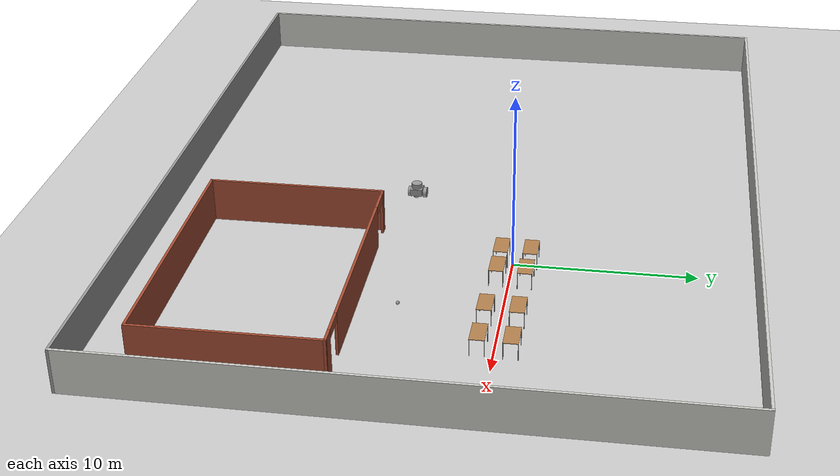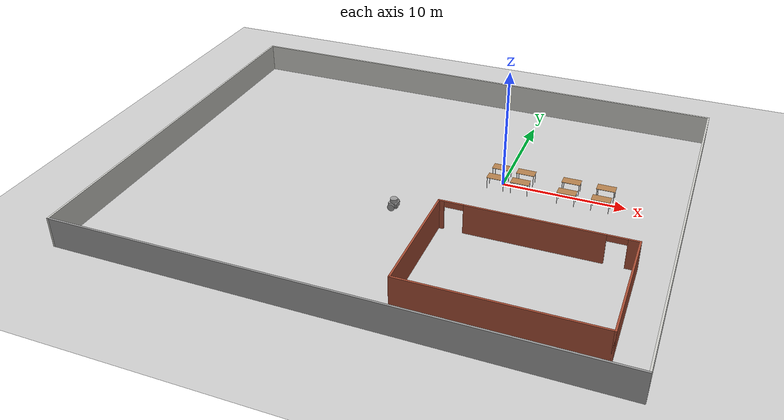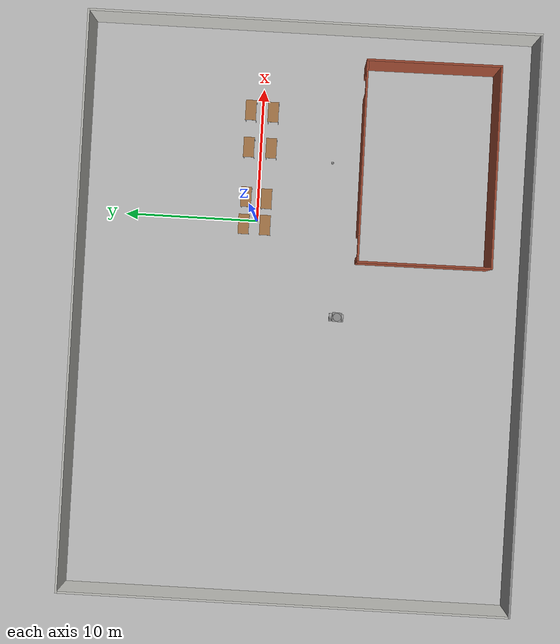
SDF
<sdf version="1.6">
 <world name="default">
  <model name="ground_plane">
   <static>1</static>
   <link name="link">
    <collision name="collision">
     <geometry><plane><normal>0 0 1</normal><size>100 100</size></plane></geometry>
     <surface>
      <contact><collide_bitmask>65535</collide_bitmask></contact>
      <friction><ode><mu>100</mu><mu2>50</mu2></ode></friction>
     </surface>
    </collision>
    <visual name="visual">
     <cast_shadows>0</cast_shadows>
     <geometry><plane><normal>0 0 1</normal><size>100 100</size></plane></geometry>
     <material>
      <script><uri>file://media/materials/scripts/gazebo.material</uri><name>Gazebo/Grey</name></script>
     </material>
    </visual>
   </link>
  </model>
  <model name="table_9">
   <static>1</static>
   <link name="link">
    <collision name="surface">
     <pose>0 0 1 0 -0 0</pose>
     <geometry><box><size>1.5 0.8 0.03</size></box></geometry>
     <surface><friction><ode><mu>0.6</mu><mu2>0.6</mu2></ode></friction></surface>
    </collision>
    <visual name="visual1">
     <pose>0 0 1 0 -0 0</pose>
     <geometry><box><size>1.5 0.8 0.03</size></box></geometry>
     <material>
      <script><uri>file://media/materials/scripts/gazebo.material</uri><name>Gazebo/Wood</name></script>
     </material>
    </visual>
    <collision name="front_left_leg">
     <pose>0.68 0.38 0.5 0 -0 0</pose>
     <geometry><cylinder><radius>0.02</radius><length>1</length></cylinder></geometry>
    </collision>
    <visual name="front_left_leg">
     <pose>0.68 0.38 0.5 0 -0 0</pose>
     <geometry><cylinder><radius>0.02</radius><length>1</length></cylinder></geometry>
     <material>
      <script><uri>file://media/materials/scripts/gazebo.material</uri><name>Gazebo/Grey</name></script>
     </material>
    </visual>
    <collision name="front_right_leg">
     <pose>0.68 -0.38 0.5 0 -0 0</pose>
     <geometry><cylinder><radius>0.02</radius><length>1</length></cylinder></geometry>
    </collision>
    <visual name="front_right_leg">
     <pose>0.68 -0.38 0.5 0 -0 0</pose>
     <geometry><cylinder><radius>0.02</radius><length>1</length></cylinder></geometry>
     <material>
      <script><uri>file://media/materials/scripts/gazebo.material</uri><name>Gazebo/Grey</name></script>
     </material>
    </visual>
    <collision name="back_right_leg">
     <pose>-0.68 -0.38 0.5 0 -0 0</pose>
     <geometry><cylinder><radius>0.02</radius><length>1</length></cylinder></geometry>
    </collision>
    <visual name="back_right_leg">
     <pose>-0.68 -0.38 0.5 0 -0 0</pose>
     <geometry><cylinder><radius>0.02</radius><length>1</length></cylinder></geometry>
     <material>
      <script><uri>file://media/materials/scripts/gazebo.material</uri><name>Gazebo/Grey</name></script>
     </material>
    </visual>
    <collision name="back_left_leg">
     <pose>-0.68 0.38 0.5 0 -0 0</pose>
     <geometry><cylinder><radius>0.02</radius><length>1</length></cylinder></geometry>
    </collision>
    <visual name="back_left_leg">
     <pose>-0.68 0.38 0.5 0 -0 0</pose>
     <geometry><cylinder><radius>0.02</radius><length>1</length></cylinder></geometry>
     <material>
      <script><uri>file://media/materials/scripts/gazebo.material</uri><name>Gazebo/Grey</name></script>
     </material>
    </visual>
   </link>
   <pose>8.12729 -0.810294 0 0 -0 0</pose>
  </model>
  <model name="table_10">
   <static>1</static>
   <link name="link">
    <collision name="surface">
     <pose>0 0 1 0 -0 0</pose>
     <geometry><box><size>1.5 0.8 0.03</size></box></geometry>
     <surface><friction><ode><mu>0.6</mu><mu2>0.6</mu2></ode></friction></surface>
    </collision>
    <visual name="visual1">
     <pose>0 0 1 0 -0 0</pose>
     <geometry><box><size>1.5 0.8 0.03</size></box></geometry>
     <material>
      <script><uri>file://media/materials/scripts/gazebo.material</uri><name>Gazebo/Wood</name></script>
     </material>
    </visual>
    <collision name="front_left_leg">
     <pose>0.68 0.38 0.5 0 -0 0</pose>
     <geometry><cylinder><radius>0.02</radius><length>1</length></cylinder></geometry>
    </collision>
    <visual name="front_left_leg">
     <pose>0.68 0.38 0.5 0 -0 0</pose>
     <geometry><cylinder><radius>0.02</radius><length>1</length></cylinder></geometry>
     <material>
      <script><uri>file://media/materials/scripts/gazebo.material</uri><name>Gazebo/Grey</name></script>
     </material>
    </visual>
    <collision name="front_right_leg">
     <pose>0.68 -0.38 0.5 0 -0 0</pose>
     <geometry><cylinder><radius>0.02</radius><length>1</length></cylinder></geometry>
    </collision>
    <visual name="front_right_leg">
     <pose>0.68 -0.38 0.5 0 -0 0</pose>
     <geometry><cylinder><radius>0.02</radius><length>1</length></cylinder></geometry>
     <material>
      <script><uri>file://media/materials/scripts/gazebo.material</uri><name>Gazebo/Grey</name></script>
     </material>
    </visual>
    <collision name="back_right_leg">
     <pose>-0.68 -0.38 0.5 0 -0 0</pose>
     <geometry><cylinder><radius>0.02</radius><length>1</length></cylinder></geometry>
    </collision>
    <visual name="back_right_leg">
     <pose>-0.68 -0.38 0.5 0 -0 0</pose>
     <geometry><cylinder><radius>0.02</radius><length>1</length></cylinder></geometry>
     <material>
      <script><uri>file://media/materials/scripts/gazebo.material</uri><name>Gazebo/Grey</name></script>
     </material>
    </visual>
    <collision name="back_left_leg">
     <pose>-0.68 0.38 0.5 0 -0 0</pose>
     <geometry><cylinder><radius>0.02</radius><length>1</length></cylinder></geometry>
    </collision>
    <visual name="back_left_leg">
     <pose>-0.68 0.38 0.5 0 -0 0</pose>
     <geometry><cylinder><radius>0.02</radius><length>1</length></cylinder></geometry>
     <material>
      <script><uri>file://media/materials/scripts/gazebo.material</uri><name>Gazebo/Grey</name></script>
     </material>
    </visual>
   </link>
   <pose>8.2006 0.876283 0 0 -0 0</pose>
  </model>
  <model name="table_13">
   <static>1</static>
   <link name="link">
    <collision name="surface">
     <pose>0 0 1 0 -0 0</pose>
     <geometry><box><size>1.5 0.8 0.03</size></box></geometry>
     <surface><friction><ode><mu>0.6</mu><mu2>0.6</mu2></ode></friction></surface>
    </collision>
    <visual name="visual1">
     <pose>0 0 1 0 -0 0</pose>
     <geometry><box><size>1.5 0.8 0.03</size></box></geometry>
     <material>
      <script><uri>file://media/materials/scripts/gazebo.material</uri><name>Gazebo/Wood</name></script>
     </material>
    </visual>
    <collision name="front_left_leg">
     <pose>0.68 0.38 0.5 0 -0 0</pose>
     <geometry><cylinder><radius>0.02</radius><length>1</length></cylinder></geometry>
    </collision>
    <visual name="front_left_leg">
     <pose>0.68 0.38 0.5 0 -0 0</pose>
     <geometry><cylinder><radius>0.02</radius><length>1</length></cylinder></geometry>
     <material>
      <script><uri>file://media/materials/scripts/gazebo.material</uri><name>Gazebo/Grey</name></script>
     </material>
    </visual>
    <collision name="front_right_leg">
     <pose>0.68 -0.38 0.5 0 -0 0</pose>
     <geometry><cylinder><radius>0.02</radius><length>1</length></cylinder></geometry>
    </collision>
    <visual name="front_right_leg">
     <pose>0.68 -0.38 0.5 0 -0 0</pose>
     <geometry><cylinder><radius>0.02</radius><length>1</length></cylinder></geometry>
     <material>
      <script><uri>file://media/materials/scripts/gazebo.material</uri><name>Gazebo/Grey</name></script>
     </material>
    </visual>
    <collision name="back_right_leg">
     <pose>-0.68 -0.38 0.5 0 -0 0</pose>
     <geometry><cylinder><radius>0.02</radius><length>1</length></cylinder></geometry>
    </collision>
    <visual name="back_right_leg">
     <pose>-0.68 -0.38 0.5 0 -0 0</pose>
     <geometry><cylinder><radius>0.02</radius><length>1</length></cylinder></geometry>
     <material>
      <script><uri>file://media/materials/scripts/gazebo.material</uri><name>Gazebo/Grey</name></script>
     </material>
    </visual>
    <collision name="back_left_leg">
     <pose>-0.68 0.38 0.5 0 -0 0</pose>
     <geometry><cylinder><radius>0.02</radius><length>1</length></cylinder></geometry>
    </collision>
    <visual name="back_left_leg">
     <pose>-0.68 0.38 0.5 0 -0 0</pose>
     <geometry><cylinder><radius>0.02</radius><length>1</length></cylinder></geometry>
     <material>
      <script><uri>file://media/materials/scripts/gazebo.material</uri><name>Gazebo/Grey</name></script>
     </material>
    </visual>
   </link>
   <pose>5.41488 -0.809022 0 0 -0 0</pose>
  </model>
  <model name="table_14">
   <static>1</static>
   <link name="link">
    <collision name="surface">
     <pose>0 0 1 0 -0 0</pose>
     <geometry><box><size>1.5 0.8 0.03</size></box></geometry>
     <surface><friction><ode><mu>0.6</mu><mu2>0.6</mu2></ode></friction></surface>
    </collision>
    <visual name="visual1">
     <pose>0 0 1 0 -0 0</pose>
     <geometry><box><size>1.5 0.8 0.03</size></box></geometry>
     <material>
      <script><uri>file://media/materials/scripts/gazebo.material</uri><name>Gazebo/Wood</name></script>
     </material>
    </visual>
    <collision name="front_left_leg">
     <pose>0.68 0.38 0.5 0 -0 0</pose>
     <geometry><cylinder><radius>0.02</radius><length>1</length></cylinder></geometry>
    </collision>
    <visual name="front_left_leg">
     <pose>0.68 0.38 0.5 0 -0 0</pose>
     <geometry><cylinder><radius>0.02</radius><length>1</length></cylinder></geometry>
     <material>
      <script><uri>file://media/materials/scripts/gazebo.material</uri><name>Gazebo/Grey</name></script>
     </material>
    </visual>
    <collision name="front_right_leg">
     <pose>0.68 -0.38 0.5 0 -0 0</pose>
     <geometry><cylinder><radius>0.02</radius><length>1</length></cylinder></geometry>
    </collision>
    <visual name="front_right_leg">
     <pose>0.68 -0.38 0.5 0 -0 0</pose>
     <geometry><cylinder><radius>0.02</radius><length>1</length></cylinder></geometry>
     <material>
      <script><uri>file://media/materials/scripts/gazebo.material</uri><name>Gazebo/Grey</name></script>
     </material>
    </visual>
    <collision name="back_right_leg">
     <pose>-0.68 -0.38 0.5 0 -0 0</pose>
     <geometry><cylinder><radius>0.02</radius><length>1</length></cylinder></geometry>
    </collision>
    <visual name="back_right_leg">
     <pose>-0.68 -0.38 0.5 0 -0 0</pose>
     <geometry><cylinder><radius>0.02</radius><length>1</length></cylinder></geometry>
     <material>
      <script><uri>file://media/materials/scripts/gazebo.material</uri><name>Gazebo/Grey</name></script>
     </material>
    </visual>
    <collision name="back_left_leg">
     <pose>-0.68 0.38 0.5 0 -0 0</pose>
     <geometry><cylinder><radius>0.02</radius><length>1</length></cylinder></geometry>
    </collision>
    <visual name="back_left_leg">
     <pose>-0.68 0.38 0.5 0 -0 0</pose>
     <geometry><cylinder><radius>0.02</radius><length>1</length></cylinder></geometry>
     <material>
      <script><uri>file://media/materials/scripts/gazebo.material</uri><name>Gazebo/Grey</name></script>
     </material>
    </visual>
   </link>
   <pose>5.41488 0.876571 0 0 -0 0</pose>
  </model>
  <model name="table_17">
   <static>1</static>
   <link name="link">
    <collision name="surface">
     <pose>0 0 1 0 -0 0</pose>
     <geometry><box><size>1.5 0.8 0.03</size></box></geometry>
     <surface><friction><ode><mu>0.6</mu><mu2>0.6</mu2></ode></friction></surface>
    </collision>
    <visual name="visual1">
     <pose>0 0 1 0 -0 0</pose>
     <geometry><box><size>1.5 0.8 0.03</size></box></geometry>
     <material>
      <script><uri>file://media/materials/scripts/gazebo.material</uri><name>Gazebo/Wood</name></script>
     </material>
    </visual>
    <collision name="front_left_leg">
     <pose>0.68 0.38 0.5 0 -0 0</pose>
     <geometry><cylinder><radius>0.02</radius><length>1</length></cylinder></geometry>
    </collision>
    <visual name="front_left_leg">
     <pose>0.68 0.38 0.5 0 -0 0</pose>
     <geometry><cylinder><radius>0.02</radius><length>1</length></cylinder></geometry>
     <material>
      <script><uri>file://media/materials/scripts/gazebo.material</uri><name>Gazebo/Grey</name></script>
     </material>
    </visual>
    <collision name="front_right_leg">
     <pose>0.68 -0.38 0.5 0 -0 0</pose>
     <geometry><cylinder><radius>0.02</radius><length>1</length></cylinder></geometry>
    </collision>
    <visual name="front_right_leg">
     <pose>0.68 -0.38 0.5 0 -0 0</pose>
     <geometry><cylinder><radius>0.02</radius><length>1</length></cylinder></geometry>
     <material>
      <script><uri>file://media/materials/scripts/gazebo.material</uri><name>Gazebo/Grey</name></script>
     </material>
    </visual>
    <collision name="back_right_leg">
     <pose>-0.68 -0.38 0.5 0 -0 0</pose>
     <geometry><cylinder><radius>0.02</radius><length>1</length></cylinder></geometry>
    </collision>
    <visual name="back_right_leg">
     <pose>-0.68 -0.38 0.5 0 -0 0</pose>
     <geometry><cylinder><radius>0.02</radius><length>1</length></cylinder></geometry>
     <material>
      <script><uri>file://media/materials/scripts/gazebo.material</uri><name>Gazebo/Grey</name></script>
     </material>
    </visual>
    <collision name="back_left_leg">
     <pose>-0.68 0.38 0.5 0 -0 0</pose>
     <geometry><cylinder><radius>0.02</radius><length>1</length></cylinder></geometry>
    </collision>
    <visual name="back_left_leg">
     <pose>-0.68 0.38 0.5 0 -0 0</pose>
     <geometry><cylinder><radius>0.02</radius><length>1</length></cylinder></geometry>
     <material>
      <script><uri>file://media/materials/scripts/gazebo.material</uri><name>Gazebo/Grey</name></script>
     </material>
    </visual>
   </link>
   <pose>1.60277 -0.662149 0 0 -0 0</pose>
  </model>
  <model name="table_18">
   <static>1</static>
   <link name="link">
    <collision name="surface">
     <pose>0 0 1 0 -0 0</pose>
     <geometry><box><size>1.5 0.8 0.03</size></box></geometry>
     <surface><friction><ode><mu>0.6</mu><mu2>0.6</mu2></ode></friction></surface>
    </collision>
    <visual name="visual1">
     <pose>0 0 1 0 -0 0</pose>
     <geometry><box><size>1.5 0.8 0.03</size></box></geometry>
     <material>
      <script><uri>file://media/materials/scripts/gazebo.material</uri><name>Gazebo/Wood</name></script>
     </material>
    </visual>
    <collision name="front_left_leg">
     <pose>0.68 0.38 0.5 0 -0 0</pose>
     <geometry><cylinder><radius>0.02</radius><length>1</length></cylinder></geometry>
    </collision>
    <visual name="front_left_leg">
     <pose>0.68 0.38 0.5 0 -0 0</pose>
     <geometry><cylinder><radius>0.02</radius><length>1</length></cylinder></geometry>
     <material>
      <script><uri>file://media/materials/scripts/gazebo.material</uri><name>Gazebo/Grey</name></script>
     </material>
    </visual>
    <collision name="front_right_leg">
     <pose>0.68 -0.38 0.5 0 -0 0</pose>
     <geometry><cylinder><radius>0.02</radius><length>1</length></cylinder></geometry>
    </collision>
    <visual name="front_right_leg">
     <pose>0.68 -0.38 0.5 0 -0 0</pose>
     <geometry><cylinder><radius>0.02</radius><length>1</length></cylinder></geometry>
     <material>
      <script><uri>file://media/materials/scripts/gazebo.material</uri><name>Gazebo/Grey</name></script>
     </material>
    </visual>
    <collision name="back_right_leg">
     <pose>-0.68 -0.38 0.5 0 -0 0</pose>
     <geometry><cylinder><radius>0.02</radius><length>1</length></cylinder></geometry>
    </collision>
    <visual name="back_right_leg">
     <pose>-0.68 -0.38 0.5 0 -0 0</pose>
     <geometry><cylinder><radius>0.02</radius><length>1</length></cylinder></geometry>
     <material>
      <script><uri>file://media/materials/scripts/gazebo.material</uri><name>Gazebo/Grey</name></script>
     </material>
    </visual>
    <collision name="back_left_leg">
     <pose>-0.68 0.38 0.5 0 -0 0</pose>
     <geometry><cylinder><radius>0.02</radius><length>1</length></cylinder></geometry>
    </collision>
    <visual name="back_left_leg">
     <pose>-0.68 0.38 0.5 0 -0 0</pose>
     <geometry><cylinder><radius>0.02</radius><length>1</length></cylinder></geometry>
     <material>
      <script><uri>file://media/materials/scripts/gazebo.material</uri><name>Gazebo/Grey</name></script>
     </material>
    </visual>
   </link>
   <pose>1.67614 0.876571 0 0 -0 0</pose>
  </model>
  <model name="table_21">
   <static>1</static>
   <link name="link">
    <collision name="surface">
     <pose>0 0 1 0 -0 0</pose>
     <geometry><box><size>1.5 0.8 0.03</size></box></geometry>
     <surface><friction><ode><mu>0.6</mu><mu2>0.6</mu2></ode></friction></surface>
    </collision>
    <visual name="visual1">
     <pose>0 0 1 0 -0 0</pose>
     <geometry><box><size>1.5 0.8 0.03</size></box></geometry>
     <material>
      <script><uri>file://media/materials/scripts/gazebo.material</uri><name>Gazebo/Wood</name></script>
     </material>
    </visual>
    <collision name="front_left_leg">
     <pose>0.68 0.38 0.5 0 -0 0</pose>
     <geometry><cylinder><radius>0.02</radius><length>1</length></cylinder></geometry>
    </collision>
    <visual name="front_left_leg">
     <pose>0.68 0.38 0.5 0 -0 0</pose>
     <geometry><cylinder><radius>0.02</radius><length>1</length></cylinder></geometry>
     <material>
      <script><uri>file://media/materials/scripts/gazebo.material</uri><name>Gazebo/Grey</name></script>
     </material>
    </visual>
    <collision name="front_right_leg">
     <pose>0.68 -0.38 0.5 0 -0 0</pose>
     <geometry><cylinder><radius>0.02</radius><length>1</length></cylinder></geometry>
    </collision>
    <visual name="front_right_leg">
     <pose>0.68 -0.38 0.5 0 -0 0</pose>
     <geometry><cylinder><radius>0.02</radius><length>1</length></cylinder></geometry>
     <material>
      <script><uri>file://media/materials/scripts/gazebo.material</uri><name>Gazebo/Grey</name></script>
     </material>
    </visual>
    <collision name="back_right_leg">
     <pose>-0.68 -0.38 0.5 0 -0 0</pose>
     <geometry><cylinder><radius>0.02</radius><length>1</length></cylinder></geometry>
    </collision>
    <visual name="back_right_leg">
     <pose>-0.68 -0.38 0.5 0 -0 0</pose>
     <geometry><cylinder><radius>0.02</radius><length>1</length></cylinder></geometry>
     <material>
      <script><uri>file://media/materials/scripts/gazebo.material</uri><name>Gazebo/Grey</name></script>
     </material>
    </visual>
    <collision name="back_left_leg">
     <pose>-0.68 0.38 0.5 0 -0 0</pose>
     <geometry><cylinder><radius>0.02</radius><length>1</length></cylinder></geometry>
    </collision>
    <visual name="back_left_leg">
     <pose>-0.68 0.38 0.5 0 -0 0</pose>
     <geometry><cylinder><radius>0.02</radius><length>1</length></cylinder></geometry>
     <material>
      <script><uri>file://media/materials/scripts/gazebo.material</uri><name>Gazebo/Grey</name></script>
     </material>
    </visual>
   </link>
   <pose>-0.376572 -0.662149 0 0 -0 0</pose>
  </model>
  <model name="table_22">
   <static>1</static>
   <link name="link">
    <collision name="surface">
     <pose>0 0 1 0 -0 0</pose>
     <geometry><box><size>1.5 0.8 0.03</size></box></geometry>
     <surface><friction><ode><mu>0.6</mu><mu2>0.6</mu2></ode></friction></surface>
    </collision>
    <visual name="visual1">
     <pose>0 0 1 0 -0 0</pose>
     <geometry><box><size>1.5 0.8 0.03</size></box></geometry>
     <material>
      <script><uri>file://media/materials/scripts/gazebo.material</uri><name>Gazebo/Wood</name></script>
     </material>
    </visual>
    <collision name="front_left_leg">
     <pose>0.68 0.38 0.5 0 -0 0</pose>
     <geometry><cylinder><radius>0.02</radius><length>1</length></cylinder></geometry>
    </collision>
    <visual name="front_left_leg">
     <pose>0.68 0.38 0.5 0 -0 0</pose>
     <geometry><cylinder><radius>0.02</radius><length>1</length></cylinder></geometry>
     <material>
      <script><uri>file://media/materials/scripts/gazebo.material</uri><name>Gazebo/Grey</name></script>
     </material>
    </visual>
    <collision name="front_right_leg">
     <pose>0.68 -0.38 0.5 0 -0 0</pose>
     <geometry><cylinder><radius>0.02</radius><length>1</length></cylinder></geometry>
    </collision>
    <visual name="front_right_leg">
     <pose>0.68 -0.38 0.5 0 -0 0</pose>
     <geometry><cylinder><radius>0.02</radius><length>1</length></cylinder></geometry>
     <material>
      <script><uri>file://media/materials/scripts/gazebo.material</uri><name>Gazebo/Grey</name></script>
     </material>
    </visual>
    <collision name="back_right_leg">
     <pose>-0.68 -0.38 0.5 0 -0 0</pose>
     <geometry><cylinder><radius>0.02</radius><length>1</length></cylinder></geometry>
    </collision>
    <visual name="back_right_leg">
     <pose>-0.68 -0.38 0.5 0 -0 0</pose>
     <geometry><cylinder><radius>0.02</radius><length>1</length></cylinder></geometry>
     <material>
      <script><uri>file://media/materials/scripts/gazebo.material</uri><name>Gazebo/Grey</name></script>
     </material>
    </visual>
    <collision name="back_left_leg">
     <pose>-0.68 0.38 0.5 0 -0 0</pose>
     <geometry><cylinder><radius>0.02</radius><length>1</length></cylinder></geometry>
    </collision>
    <visual name="back_left_leg">
     <pose>-0.68 0.38 0.5 0 -0 0</pose>
     <geometry><cylinder><radius>0.02</radius><length>1</length></cylinder></geometry>
     <material>
      <script><uri>file://media/materials/scripts/gazebo.material</uri><name>Gazebo/Grey</name></script>
     </material>
    </visual>
   </link>
   <pose>-0.376572 0.949516 0 0 -0 0</pose>
  </model>
  <model name="classroom_2">
   <pose>4.62402 -12.5753 0 0 0 -3.13578</pose>
   <link name="Wall_0">
    <collision name="Wall_0_Collision">
     <geometry><box><size>10 0.15 2.5</size></box></geometry>
     <pose>0 0 1.25 0 -0 0</pose>
    </collision>
    <visual name="Wall_0_Visual">
     <pose>0 0 1.25 0 -0 0</pose>
     <geometry><box><size>10 0.15 2.5</size></box></geometry>
     <material>
      <script><uri>file://media/materials/scripts/gazebo.material</uri><name>Gazebo/Bricks</name></script>
      <ambient>1 1 1 1</ambient>
     </material>
     <meta><layer>0</layer></meta>
    </visual>
    <pose>-7.425 0 0 0 -0 1.5708</pose>
   </link>
   <link name="Wall_2">
    <collision name="Wall_2_Collision">
     <geometry><box><size>15 0.15 2.5</size></box></geometry>
     <pose>0 0 1.25 0 -0 0</pose>
    </collision>
    <visual name="Wall_2_Visual">
     <pose>0 0 1.25 0 -0 0</pose>
     <geometry><box><size>15 0.15 2.5</size></box></geometry>
     <material>
      <script><uri>file://media/materials/scripts/gazebo.material</uri><name>Gazebo/Bricks</name></script>
      <ambient>1 1 1 1</ambient>
     </material>
     <meta><layer>0</layer></meta>
    </visual>
    <pose>0 4.925 0 0 -0 0</pose>
   </link>
   <link name="Wall_4">
    <collision name="Wall_4_Collision">
     <geometry><box><size>10 0.15 2.5</size></box></geometry>
     <pose>0 0 1.25 0 -0 0</pose>
    </collision>
    <visual name="Wall_4_Visual">
     <pose>0 0 1.25 0 -0 0</pose>
     <geometry><box><size>10 0.15 2.5</size></box></geometry>
     <material>
      <script><uri>file://media/materials/scripts/gazebo.material</uri><name>Gazebo/Bricks</name></script>
      <ambient>1 1 1 1</ambient>
     </material>
     <meta><layer>0</layer></meta>
    </visual>
    <pose>7.425 0 0 0 0 -1.5708</pose>
   </link>
   <link name="Wall_6">
    <pose>0 -4.925 0 0 -0 0</pose>
    <visual name="Wall_6_Visual_0">
     <pose>-7.03429 0 1.25 0 -0 0</pose>
     <geometry><box><size>0.931421 0.15 2.5</size></box></geometry>
     <material>
      <script><uri>file://media/materials/scripts/gazebo.material</uri><name>Gazebo/Bricks</name></script>
      <ambient>1 1 1 1</ambient>
     </material>
     <meta><layer>0</layer></meta>
    </visual>
    <collision name="Wall_6_Collision_0">
     <geometry><box><size>0.931421 0.15 2.5</size></box></geometry>
     <pose>-7.03429 0 1.25 0 -0 0</pose>
    </collision>
    <visual name="Wall_6_Visual_1">
     <pose>0.218509 0 1.25 0 -0 0</pose>
     <geometry><box><size>10.5742 0.15 2.5</size></box></geometry>
     <material>
      <script><uri>file://media/materials/scripts/gazebo.material</uri><name>Gazebo/Bricks</name></script>
      <ambient>1 1 1 1</ambient>
     </material>
     <meta><layer>0</layer></meta>
    </visual>
    <collision name="Wall_6_Collision_1">
     <geometry><box><size>10.5742 0.15 2.5</size></box></geometry>
     <pose>0.218509 0 1.25 0 -0 0</pose>
    </collision>
    <visual name="Wall_6_Visual_2">
     <pose>7.2528 0 1.25 0 -0 0</pose>
     <geometry><box><size>0.494402 0.15 2.5</size></box></geometry>
     <material>
      <script><uri>file://media/materials/scripts/gazebo.material</uri><name>Gazebo/Bricks</name></script>
      <ambient>1 1 1 1</ambient>
     </material>
     <meta><layer>0</layer></meta>
    </visual>
    <collision name="Wall_6_Collision_2">
     <geometry><box><size>0.494402 0.15 2.5</size></box></geometry>
     <pose>7.2528 0 1.25 0 -0 0</pose>
    </collision>
    <visual name="Wall_6_Visual_3">
     <pose>-5.81858 0 2.25 0 -0 0</pose>
     <geometry><box><size>1.5 0.15 0.5</size></box></geometry>
     <material>
      <script><uri>file://media/materials/scripts/gazebo.material</uri><name>Gazebo/Bricks</name></script>
      <ambient>1 1 1 1</ambient>
     </material>
     <meta><layer>0</layer></meta>
    </visual>
    <collision name="Wall_6_Collision_3">
     <geometry><box><size>1.5 0.15 0.5</size></box></geometry>
     <pose>-5.81858 0 2.25 0 -0 0</pose>
    </collision>
    <visual name="Wall_6_Visual_4">
     <pose>6.2556 0 2.25 0 -0 0</pose>
     <geometry><box><size>1.5 0.15 0.5</size></box></geometry>
     <material>
      <script><uri>file://media/materials/scripts/gazebo.material</uri><name>Gazebo/Bricks</name></script>
      <ambient>1 1 1 1</ambient>
     </material>
     <meta><layer>0</layer></meta>
    </visual>
    <collision name="Wall_6_Collision_4">
     <geometry><box><size>1.5 0.15 0.5</size></box></geometry>
     <pose>6.2556 0 2.25 0 -0 0</pose>
    </collision>
   </link>
   <static>1</static>
  </model>
  <model name="outwall">
   <pose>-6.86447 -3.59381 0 0 -0 0</pose>
   <link name="Wall_5">
    <collision name="Wall_5_Collision">
     <geometry><box><size>43 0.15 2.5</size></box></geometry>
     <pose>0 0 1.25 0 -0 0</pose>
    </collision>
    <visual name="Wall_5_Visual">
     <pose>0 0 1.25 0 -0 0</pose>
     <geometry><box><size>43 0.15 2.5</size></box></geometry>
     <material>
      <script><uri>file://media/materials/scripts/gazebo.material</uri><name>Gazebo/CeilingTiled</name></script>
      <ambient>1 1 1 1</ambient>
     </material>
     <meta><layer>0</layer></meta>
    </visual>
    <pose>0 16.675 0 0 -0 0</pose>
   </link>
   <link name="Wall_6">
    <collision name="Wall_6_Collision">
     <geometry><box><size>33.5 0.15 2.5</size></box></geometry>
     <pose>0 0 1.25 0 -0 0</pose>
    </collision>
    <visual name="Wall_6_Visual">
     <pose>0 0 1.25 0 -0 0</pose>
     <geometry><box><size>33.5 0.15 2.5</size></box></geometry>
     <material>
      <script><uri>file://media/materials/scripts/gazebo.material</uri><name>Gazebo/CeilingTiled</name></script>
      <ambient>1 1 1 1</ambient>
     </material>
     <meta><layer>0</layer></meta>
    </visual>
    <pose>21.425 0 0 0 0 -1.5708</pose>
   </link>
   <link name="Wall_7">
    <collision name="Wall_7_Collision">
     <geometry><box><size>43 0.15 2.5</size></box></geometry>
     <pose>0 0 1.25 0 -0 0</pose>
    </collision>
    <visual name="Wall_7_Visual">
     <pose>0 0 1.25 0 -0 0</pose>
     <geometry><box><size>43 0.15 2.5</size></box></geometry>
     <material>
      <script><uri>file://media/materials/scripts/gazebo.material</uri><name>Gazebo/Grey</name></script>
      <ambient>1 1 1 1</ambient>
     </material>
     <meta><layer>0</layer></meta>
    </visual>
    <pose>0 -16.675 0 0 -0 3.14159</pose>
   </link>
   <link name="Wall_8">
    <collision name="Wall_8_Collision">
     <geometry><box><size>33.5 0.15 2.5</size></box></geometry>
     <pose>0 0 1.25 0 -0 0</pose>
    </collision>
    <visual name="Wall_8_Visual">
     <pose>0 0 1.25 0 -0 0</pose>
     <geometry><box><size>33.5 0.15 2.5</size></box></geometry>
     <material>
      <script><uri>file://media/materials/scripts/gazebo.material</uri><name>Gazebo/CeilingTiled</name></script>
      <ambient>1 1 1 1</ambient>
     </material>
     <meta><layer>0</layer></meta>
    </visual>
    <pose>-21.425 0 0 0 -0 1.5708</pose>
   </link>
   <static>1</static>
  </model>
  <model name="vacuumrobot_0">
   <link name="link_0">
    <pose>-0.01 -0.018 0.01 0 -0 0</pose>
    <inertial>
     <mass>1</mass>
     <inertia>
      <ixx>0.166667</ixx>
      <ixy>0</ixy>
      <ixz>0</ixz>
      <iyy>0.166667</iyy>
      <iyz>0</iyz>
      <izz>0.166667</izz>
     </inertia>
    </inertial>
    <visual name="visual">
     <geometry><box><size>0.7 0.7 0.4</size></box></geometry>
     <material>
      <lighting>1</lighting>
      <script><uri>file://media/materials/scripts/gazebo.material</uri><name>Gazebo/Grey</name></script>
      <shader type="pixel"><normal_map>__default__</normal_map></shader>
      <ambient>0.3 0.3 0.3 1</ambient>
      <diffuse>0.7 0.7 0.7 1</diffuse>
      <specular>0.01 0.01 0.01 1</specular>
      <emissive>0 0 0 1</emissive>
     </material>
    </visual>
    <collision name="collision">
     <geometry><box><size>0.7 0.7 0.4</size></box></geometry>
     <surface>
      <friction>
       <ode><mu>1</mu><mu2>1</mu2><fdir1>0 0 0</fdir1><slip1>0</slip1><slip2>0</slip2></ode>
       <torsional>
        <coefficient>1</coefficient>
        <patch_radius>0</patch_radius>
        <surface_radius>0</surface_radius>
        <use_patch_radius>1</use_patch_radius>
        <ode><slip>0</slip></ode>
       </torsional>
      </friction>
      <bounce><restitution_coefficient>0</restitution_coefficient><threshold>1e+06</threshold></bounce>
      <contact>
       <collide_without_contact>0</collide_without_contact>
       <collide_without_contact_bitmask>1</collide_without_contact_bitmask>
       <collide_bitmask>1</collide_bitmask>
       <ode>
        <soft_cfm>0</soft_cfm>
        <soft_erp>0.2</soft_erp>
        <kp>1e+13</kp>
        <kd>1</kd>
        <max_vel>0.01</max_vel>
        <min_depth>0</min_depth>
       </ode>
       <bullet>
        <split_impulse>1</split_impulse>
        <split_impulse_penetration_threshold>-0.01</split_impulse_penetration_threshold>
        <soft_cfm>0</soft_cfm>
        <soft_erp>0.2</soft_erp>
        <kp>1e+13</kp>
        <kd>1</kd>
       </bullet>
      </contact>
     </surface>
    </collision>
   </link>
   <link name="link_1">
    <pose>-0.06 0.472029 -0.09 1.5707 -0 0</pose>
    <inertial>
     <mass>1</mass>
     <inertia><ixx>0.145833</ixx><ixy>0</ixy><ixz>0</ixz><iyy>0.145833</iyy><iyz>0</iyz><izz>0.125</izz></inertia>
    </inertial>
    <visual name="visual">
     <geometry><cylinder><radius>0.3</radius><length>0.2</length></cylinder></geometry>
     <material>
      <lighting>1</lighting>
      <script><uri>file://media/materials/scripts/gazebo.material</uri><name>Gazebo/Grey</name></script>
      <shader type="pixel"><normal_map>__default__</normal_map></shader>
      <ambient>0.3 0.3 0.3 1</ambient>
      <diffuse>0.7 0.7 0.7 1</diffuse>
      <specular>0.01 0.01 0.01 1</specular>
      <emissive>0 0 0 1</emissive>
     </material>
    </visual>
    <collision name="collision">
     <geometry><cylinder><radius>0.3</radius><length>0.2</length></cylinder></geometry>
     <surface>
      <friction>
       <ode><mu>1</mu><mu2>1</mu2><fdir1>0 0 0</fdir1><slip1>0</slip1><slip2>0</slip2></ode>
       <torsional>
        <coefficient>1</coefficient>
        <patch_radius>0</patch_radius>
        <surface_radius>0</surface_radius>
        <use_patch_radius>1</use_patch_radius>
        <ode><slip>0</slip></ode>
       </torsional>
      </friction>
      <bounce><restitution_coefficient>0</restitution_coefficient><threshold>1e+06</threshold></bounce>
      <contact>
       <collide_without_contact>0</collide_without_contact>
       <collide_without_contact_bitmask>1</collide_without_contact_bitmask>
       <collide_bitmask>1</collide_bitmask>
       <ode>
        <soft_cfm>0</soft_cfm>
        <soft_erp>0.2</soft_erp>
        <kp>1e+13</kp>
        <kd>1</kd>
        <max_vel>0.01</max_vel>
        <min_depth>0</min_depth>
       </ode>
       <bullet>
        <split_impulse>1</split_impulse>
        <split_impulse_penetration_threshold>-0.01</split_impulse_penetration_threshold>
        <soft_cfm>0</soft_cfm>
        <soft_erp>0.2</soft_erp>
        <kp>1e+13</kp>
        <kd>1</kd>
       </bullet>
      </contact>
     </surface>
    </collision>
   </link>
   <link name="link_1_clone">
    <pose>-0.06 -0.41803 -0.09 1.5707 -0 0</pose>
    <inertial>
     <mass>1</mass>
     <inertia><ixx>0.145833</ixx><ixy>0</ixy><ixz>0</ixz><iyy>0.145833</iyy><iyz>0</iyz><izz>0.125</izz></inertia>
    </inertial>
    <visual name="visual">
     <geometry><cylinder><radius>0.3</radius><length>0.2</length></cylinder></geometry>
     <material>
      <lighting>1</lighting>
      <script><uri>file://media/materials/scripts/gazebo.material</uri><name>Gazebo/Grey</name></script>
      <shader type="pixel"><normal_map>__default__</normal_map></shader>
      <ambient>0.3 0.3 0.3 1</ambient>
      <diffuse>0.7 0.7 0.7 1</diffuse>
      <specular>0.01 0.01 0.01 1</specular>
      <emissive>0 0 0 1</emissive>
     </material>
    </visual>
    <collision name="collision">
     <geometry><cylinder><radius>0.3</radius><length>0.2</length></cylinder></geometry>
     <surface>
      <friction>
       <ode><mu>1</mu><mu2>1</mu2><fdir1>0 0 0</fdir1><slip1>0</slip1><slip2>0</slip2></ode>
       <torsional>
        <coefficient>1</coefficient>
        <patch_radius>0</patch_radius>
        <surface_radius>0</surface_radius>
        <use_patch_radius>1</use_patch_radius>
        <ode><slip>0</slip></ode>
       </torsional>
      </friction>
      <bounce><restitution_coefficient>0</restitution_coefficient><threshold>1e+06</threshold></bounce>
      <contact>
       <collide_without_contact>0</collide_without_contact>
       <collide_without_contact_bitmask>1</collide_without_contact_bitmask>
       <collide_bitmask>1</collide_bitmask>
       <ode>
        <soft_cfm>0</soft_cfm>
        <soft_erp>0.2</soft_erp>
        <kp>1e+13</kp>
        <kd>1</kd>
        <max_vel>0.01</max_vel>
        <min_depth>0</min_depth>
       </ode>
       <bullet>
        <split_impulse>1</split_impulse>
        <split_impulse_penetration_threshold>-0.01</split_impulse_penetration_threshold>
        <soft_cfm>0</soft_cfm>
        <soft_erp>0.2</soft_erp>
        <kp>1e+13</kp>
        <kd>1</kd>
       </bullet>
      </contact>
     </surface>
    </collision>
   </link>
   <link name="link_2">
    <pose>0.14 -0.018 -0.19 0 -0 0</pose>
    <inertial>
     <mass>1</mass>
     <inertia><ixx>0.1</ixx><ixy>0</ixy><ixz>0</ixz><iyy>0.1</iyy><iyz>0</iyz><izz>0.1</izz></inertia>
    </inertial>
    <visual name="visual">
     <geometry><sphere><radius>0.2</radius></sphere></geometry>
     <material>
      <lighting>1</lighting>
      <script><uri>file://media/materials/scripts/gazebo.material</uri><name>Gazebo/Grey</name></script>
      <shader type="pixel"><normal_map>__default__</normal_map></shader>
      <ambient>0.3 0.3 0.3 1</ambient>
      <diffuse>0.7 0.7 0.7 1</diffuse>
      <specular>0.01 0.01 0.01 1</specular>
      <emissive>0 0 0 1</emissive>
     </material>
    </visual>
    <collision name="collision">
     <geometry><sphere><radius>0.2</radius></sphere></geometry>
     <surface>
      <friction>
       <ode><mu>1</mu><mu2>1</mu2><fdir1>0 0 0</fdir1><slip1>0</slip1><slip2>0</slip2></ode>
       <torsional>
        <coefficient>1</coefficient>
        <patch_radius>0</patch_radius>
        <surface_radius>0</surface_radius>
        <use_patch_radius>1</use_patch_radius>
        <ode><slip>0</slip></ode>
       </torsional>
      </friction>
      <bounce><restitution_coefficient>0</restitution_coefficient><threshold>1e+06</threshold></bounce>
      <contact>
       <collide_without_contact>0</collide_without_contact>
       <collide_without_contact_bitmask>1</collide_without_contact_bitmask>
       <collide_bitmask>1</collide_bitmask>
       <ode>
        <soft_cfm>0</soft_cfm>
        <soft_erp>0.2</soft_erp>
        <kp>1e+13</kp>
        <kd>1</kd>
        <max_vel>0.01</max_vel>
        <min_depth>0</min_depth>
       </ode>
       <bullet>
        <split_impulse>1</split_impulse>
        <split_impulse_penetration_threshold>-0.01</split_impulse_penetration_threshold>
        <soft_cfm>0</soft_cfm>
        <soft_erp>0.2</soft_erp>
        <kp>1e+13</kp>
        <kd>1</kd>
       </bullet>
      </contact>
     </surface>
    </collision>
   </link>
   <link name="link_3">
    <pose>-0.01 -0.018 0.36 0 -0 0</pose>
    <inertial>
     <mass>1</mass>
     <inertia><ixx>0.145833</ixx><ixy>0</ixy><ixz>0</ixz><iyy>0.145833</iyy><iyz>0</iyz><izz>0.125</izz></inertia>
    </inertial>
    <visual name="visual">
     <geometry><cylinder><radius>0.3</radius><length>0.3</length></cylinder></geometry>
     <material>
      <lighting>1</lighting>
      <script><uri>file://media/materials/scripts/gazebo.material</uri><name>Gazebo/Grey</name></script>
      <shader type="pixel"><normal_map>__default__</normal_map></shader>
      <ambient>0.3 0.3 0.3 1</ambient>
      <diffuse>0.7 0.7 0.7 1</diffuse>
      <specular>0.01 0.01 0.01 1</specular>
      <emissive>0 0 0 1</emissive>
     </material>
    </visual>
    <collision name="collision">
     <geometry><cylinder><radius>0.3</radius><length>0.3</length></cylinder></geometry>
     <surface>
      <friction>
       <ode><mu>1</mu><mu2>1</mu2><fdir1>0 0 0</fdir1><slip1>0</slip1><slip2>0</slip2></ode>
       <torsional>
        <coefficient>1</coefficient>
        <patch_radius>0</patch_radius>
        <surface_radius>0</surface_radius>
        <use_patch_radius>1</use_patch_radius>
        <ode><slip>0</slip></ode>
       </torsional>
      </friction>
      <bounce><restitution_coefficient>0</restitution_coefficient><threshold>1e+06</threshold></bounce>
      <contact>
       <collide_without_contact>0</collide_without_contact>
       <collide_without_contact_bitmask>1</collide_without_contact_bitmask>
       <collide_bitmask>1</collide_bitmask>
       <ode>
        <soft_cfm>0</soft_cfm>
        <soft_erp>0.2</soft_erp>
        <kp>1e+13</kp>
        <kd>1</kd>
        <max_vel>0.01</max_vel>
        <min_depth>0</min_depth>
       </ode>
       <bullet>
        <split_impulse>1</split_impulse>
        <split_impulse_penetration_threshold>-0.01</split_impulse_penetration_threshold>
        <soft_cfm>0</soft_cfm>
        <soft_erp>0.2</soft_erp>
        <kp>1e+13</kp>
        <kd>1</kd>
       </bullet>
      </contact>
     </surface>
    </collision>
   </link>
   <joint name="link_0_JOINT_2" type="revolute">
    <parent>link_0</parent>
    <child>link_1_clone</child>
    <axis>
     <xyz>0 0 1</xyz>
     <use_parent_model_frame>0</use_parent_model_frame>
     <limit>
      <lower>-1.79769e+308</lower>
      <upper>1.79769e+308</upper>
      <effort>-1</effort>
      <velocity>-1</velocity>
     </limit>
     <dynamics>
      <spring_reference>0</spring_reference>
      <spring_stiffness>0</spring_stiffness>
      <damping>0</damping>
     </dynamics>
    </axis>
    <physics>
     <ode><limit><cfm>0</cfm><erp>0.2</erp></limit><suspension><cfm>0</cfm><erp>0.2</erp></suspension></ode>
    </physics>
   </joint>
   <joint name="link_0_JOINT_4" type="revolute">
    <parent>link_0</parent>
    <child>link_2</child>
    <axis>
     <xyz>1 0 0</xyz>
     <use_parent_model_frame>0</use_parent_model_frame>
     <limit>
      <lower>-1.79769e+308</lower>
      <upper>1.79769e+308</upper>
      <effort>-1</effort>
      <velocity>-1</velocity>
     </limit>
     <dynamics>
      <spring_reference>0</spring_reference>
      <spring_stiffness>0</spring_stiffness>
      <damping>0</damping>
     </dynamics>
    </axis>
    <physics>
     <ode><limit><cfm>0</cfm><erp>0.2</erp></limit><suspension><cfm>0</cfm><erp>0.2</erp></suspension></ode>
    </physics>
   </joint>
   <joint name="link_0_JOINT_7" type="revolute">
    <parent>link_0</parent>
    <child>link_1</child>
    <axis>
     <xyz>0 0 1</xyz>
     <use_parent_model_frame>0</use_parent_model_frame>
     <limit>
      <lower>-1.79769e+308</lower>
      <upper>1.79769e+308</upper>
      <effort>-1</effort>
      <velocity>-1</velocity>
     </limit>
     <dynamics>
      <spring_reference>0</spring_reference>
      <spring_stiffness>0</spring_stiffness>
      <damping>0</damping>
     </dynamics>
    </axis>
    <physics>
     <ode><limit><cfm>0</cfm><erp>0.2</erp></limit><suspension><cfm>0</cfm><erp>0.2</erp></suspension></ode>
    </physics>
   </joint>
   <joint name="link_0_JOINT_8" type="revolute">
    <parent>link_0</parent>
    <child>link_3</child>
    <axis>
     <xyz>0 0 1</xyz>
     <use_parent_model_frame>0</use_parent_model_frame>
     <limit>
      <lower>-1.79769e+308</lower>
      <upper>1.79769e+308</upper>
      <effort>-1</effort>
      <velocity>-1</velocity>
     </limit>
     <dynamics>
      <spring_reference>0</spring_reference>
      <spring_stiffness>0</spring_stiffness>
      <damping>0</damping>
     </dynamics>
    </axis>
    <physics>
     <ode><limit><cfm>0</cfm><erp>0.2</erp></limit><suspension><cfm>0</cfm><erp>0.2</erp></suspension></ode>
    </physics>
   </joint>
   <static>0</static>
   <pose>-6.96526 -6.45078 0.390007 1e-06 4.2e-05 -0.043284</pose>
  </model>
  <model name="my_ball">
   <link name="link">
    <inertial>
     <mass>1</mass>
     <inertia><ixx>0.1</ixx><ixy>0</ixy><ixz>0</ixz><iyy>0.1</iyy><iyz>0</iyz><izz>0.1</izz></inertia>
    </inertial>
    <visual name="visual">
     <geometry><sphere><radius>0.1</radius></sphere></geometry>
     <material>
      <script><name>Gazebo/Grey</name><uri>file://media/materials/scripts/gazebo.material</uri></script>
      <shader type="pixel"><normal_map>__default__</normal_map></shader>
      <ambient>1 1 1 1</ambient>
      <diffuse>1 1 1 1</diffuse>
      <specular>1 1 1 1</specular>
      <emissive>1 1 1 1</emissive>
     </material>
    </visual>
    <collision name="collision">
     <geometry><sphere><radius>0.1</radius></sphere></geometry>
     <surface>
      <friction>
       <ode><mu>1</mu><mu2>1</mu2><fdir1>0 0 0</fdir1><slip1>0</slip1><slip2>0</slip2></ode>
       <torsional>
        <coefficient>1</coefficient>
        <patch_radius>0</patch_radius>
        <surface_radius>0</surface_radius>
        <use_patch_radius>1</use_patch_radius>
        <ode><slip>0</slip></ode>
       </torsional>
      </friction>
      <bounce><restitution_coefficient>0</restitution_coefficient><threshold>1e+06</threshold></bounce>
      <contact>
       <collide_without_contact>0</collide_without_contact>
       <collide_without_contact_bitmask>1</collide_without_contact_bitmask>
       <collide_bitmask>1</collide_bitmask>
       <ode>
        <soft_cfm>0</soft_cfm>
        <soft_erp>0.2</soft_erp>
        <kp>1e+13</kp>
        <kd>1</kd>
        <max_vel>0.01</max_vel>
        <min_depth>0</min_depth>
       </ode>
       <bullet>
        <split_impulse>1</split_impulse>
        <split_impulse_penetration_threshold>-0.01</split_impulse_penetration_threshold>
        <soft_cfm>0</soft_cfm>
        <soft_erp>0.2</soft_erp>
        <kp>1e+13</kp>
        <kd>1</kd>
       </bullet>
      </contact>
     </surface>
    </collision>
   </link>
   <static>0</static>
   <pose>4.72778 -5.50121 0.1 0 -0 0</pose>
  </model>
 </world>
</sdf>
